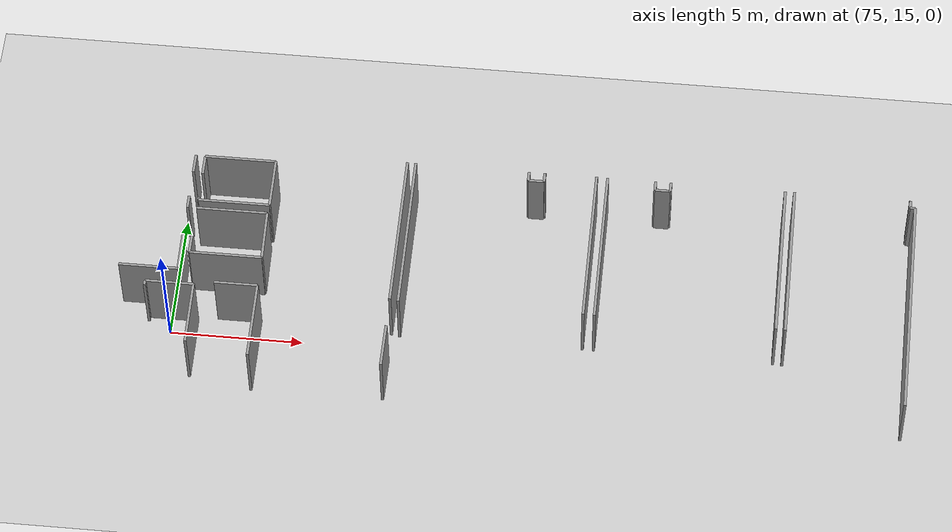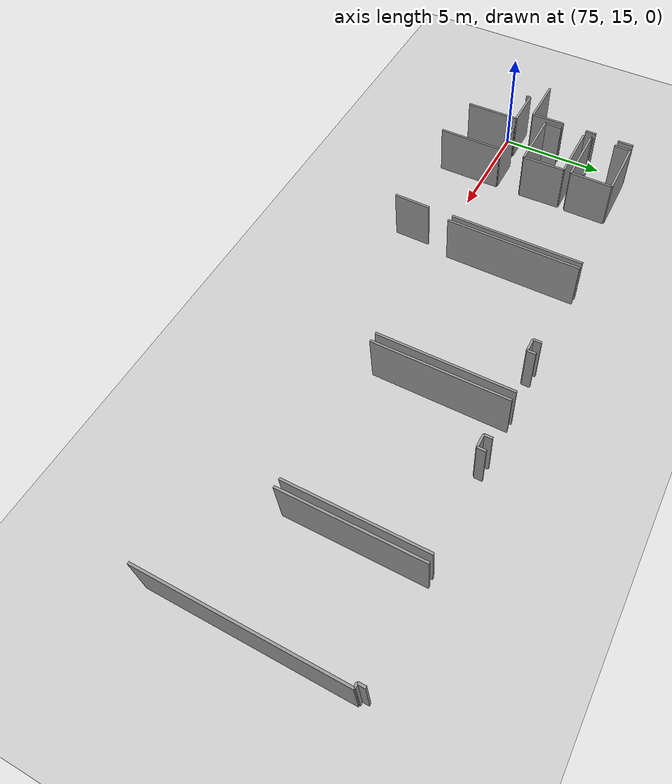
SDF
<sdf version="1.6">
 <world name="default">
  <model name="ground_plane">
   <static>1</static>
   <link name="link">
    <collision name="collision">
     <geometry><plane><normal>0 0 1</normal><size>100 100</size></plane></geometry>
     <surface><friction><ode><mu>100</mu><mu2>50</mu2></ode></friction></surface>
    </collision>
    <visual name="visual">
     <cast_shadows>0</cast_shadows>
     <geometry><plane><normal>0 0 1</normal><size>100 100</size></plane></geometry>
     <material>
      <script><uri>file://media/materials/scripts/gazebo.material</uri><name>Gazebo/Grey</name></script>
     </material>
    </visual>
   </link>
  </model>
  <model name="50010536_PLAN4">
   <static>1</static>
   <link name="Wall_267">
    <collision name="Wall_267_Collision">
     <geometry><box><size>0.203256832683 0.1 2.5</size></box></geometry>
     <pose>0.101628416341 0 1.25 0 0 0</pose>
    </collision>
    <visual name="Wall_267_Visual">
     <pose>0.101628416341 0 1.25 0 0 0</pose>
     <geometry><box><size>0.203256832683 0.1 2.5</size></box></geometry>
     <material>
      <script><uri>file://media/materials/scripts/gazebo.material</uri><name>Gazebo/Grey</name></script>
      <ambient>1 1 1 1</ambient>
     </material>
    </visual>
    <pose>176.629832079 -6.60864044694 0 0 0 1.57079632679</pose>
   </link>
   <link name="Wall_268">
    <collision name="Wall_268_Collision">
     <geometry><box><size>1.81493825985 0.1 2.5</size></box></geometry>
     <pose>0.907469129924 0 1.25 0 0 0</pose>
    </collision>
    <visual name="Wall_268_Visual">
     <pose>0.907469129924 0 1.25 0 0 0</pose>
     <geometry><box><size>1.81493825985 0.1 2.5</size></box></geometry>
     <material>
      <script><uri>file://media/materials/scripts/gazebo.material</uri><name>Gazebo/Grey</name></script>
      <ambient>1 1 1 1</ambient>
     </material>
    </visual>
    <pose>176.629832079 -6.40538361426 0 0 0 0.0</pose>
   </link>
   <link name="Wall_269">
    <collision name="Wall_269_Collision">
     <geometry><box><size>2.52652843027 0.1 2.5</size></box></geometry>
     <pose>1.26326421514 0 1.25 0 0 0</pose>
    </collision>
    <visual name="Wall_269_Visual">
     <pose>1.26326421514 0 1.25 0 0 0</pose>
     <geometry><box><size>2.52652843027 0.1 2.5</size></box></geometry>
     <material>
      <script><uri>file://media/materials/scripts/gazebo.material</uri><name>Gazebo/Grey</name></script>
      <ambient>1 1 1 1</ambient>
     </material>
    </visual>
    <pose>178.444770339 -6.40538361426 0 0 0 -1.55933781439</pose>
   </link>
   <link name="Wall_270">
    <collision name="Wall_270_Collision">
     <geometry><box><size>2.23597752595 0.1 2.5</size></box></geometry>
     <pose>1.11798876297 0 1.25 0 0 0</pose>
    </collision>
    <visual name="Wall_270_Visual">
     <pose>1.11798876297 0 1.25 0 0 0</pose>
     <geometry><box><size>2.23597752595 0.1 2.5</size></box></geometry>
     <material>
      <script><uri>file://media/materials/scripts/gazebo.material</uri><name>Gazebo/Grey</name></script>
      <ambient>1 1 1 1</ambient>
     </material>
    </visual>
    <pose>177.776897438 -5.76653652033 0 0 0 3.14159265359</pose>
   </link>
   <link name="Wall_275">
    <collision name="Wall_275_Collision">
     <geometry><box><size>0.754188489985 0.1 2.5</size></box></geometry>
     <pose>0.377094244993 0 1.25 0 0 0</pose>
    </collision>
    <visual name="Wall_275_Visual">
     <pose>0.377094244993 0 1.25 0 0 0</pose>
     <geometry><box><size>0.754188489985 0.1 2.5</size></box></geometry>
     <material>
      <script><uri>file://media/materials/scripts/gazebo.material</uri><name>Gazebo/Grey</name></script>
      <ambient>1 1 1 1</ambient>
     </material>
    </visual>
    <pose>177.755312192 -0.599054058344 0 0 0 -1.57079632679</pose>
   </link>
   <link name="Wall_276">
    <collision name="Wall_276_Collision">
     <geometry><box><size>0.522997809732 0.1 2.5</size></box></geometry>
     <pose>0.261498904866 0 1.25 0 0 0</pose>
    </collision>
    <visual name="Wall_276_Visual">
     <pose>0.261498904866 0 1.25 0 0 0</pose>
     <geometry><box><size>0.522997809732 0.1 2.5</size></box></geometry>
     <material>
      <script><uri>file://media/materials/scripts/gazebo.material</uri><name>Gazebo/Grey</name></script>
      <ambient>1 1 1 1</ambient>
     </material>
    </visual>
    <pose>177.755312192 -2.47973843761 0 0 0 -1.57079632679</pose>
   </link>
   <link name="Wall_277">
    <collision name="Wall_277_Collision">
     <geometry><box><size>1.60672214965 0.1 2.5</size></box></geometry>
     <pose>0.803361074826 0 1.25 0 0 0</pose>
    </collision>
    <visual name="Wall_277_Visual">
     <pose>0.803361074826 0 1.25 0 0 0</pose>
     <geometry><box><size>1.60672214965 0.1 2.5</size></box></geometry>
     <material>
      <script><uri>file://media/materials/scripts/gazebo.material</uri><name>Gazebo/Grey</name></script>
      <ambient>1 1 1 1</ambient>
     </material>
    </visual>
    <pose>177.755312192 -4.15995936895 0 0 0 -1.55736158626</pose>
   </link>
   <link name="Wall_278">
    <collision name="Wall_278_Collision">
     <geometry><box><size>2.70171094816 0.1 2.5</size></box></geometry>
     <pose>1.35085547408 0 1.25 0 0 0</pose>
    </collision>
    <visual name="Wall_278_Visual">
     <pose>1.35085547408 0 1.25 0 0 0</pose>
     <geometry><box><size>2.70171094816 0.1 2.5</size></box></geometry>
     <material>
      <script><uri>file://media/materials/scripts/gazebo.material</uri><name>Gazebo/Grey</name></script>
      <ambient>1 1 1 1</ambient>
     </material>
    </visual>
    <pose>180.819655271 -2.61338920103 0 0 0 3.14159265359</pose>
   </link>
   <link name="Wall_279">
    <collision name="Wall_279_Collision">
     <geometry><box><size>0.105005872457 0.1 2.5</size></box></geometry>
     <pose>0.0525029362283 0 1.25 0 0 0</pose>
    </collision>
    <visual name="Wall_279_Visual">
     <pose>0.0525029362283 0 1.25 0 0 0</pose>
     <geometry><box><size>0.105005872457 0.1 2.5</size></box></geometry>
     <material>
      <script><uri>file://media/materials/scripts/gazebo.material</uri><name>Gazebo/Grey</name></script>
      <ambient>1 1 1 1</ambient>
     </material>
    </visual>
    <pose>178.117944323 -2.61338920103 0 0 0 1.57079632679</pose>
   </link>
   <link name="Wall_280">
    <collision name="Wall_280_Collision">
     <geometry><box><size>0.792356283529 0.1 2.5</size></box></geometry>
     <pose>0.396178141764 0 1.25 0 0 0</pose>
    </collision>
    <visual name="Wall_280_Visual">
     <pose>0.396178141764 0 1.25 0 0 0</pose>
     <geometry><box><size>0.792356283529 0.1 2.5</size></box></geometry>
     <material>
      <script><uri>file://media/materials/scripts/gazebo.material</uri><name>Gazebo/Grey</name></script>
      <ambient>1 1 1 1</ambient>
     </material>
    </visual>
    <pose>178.117944323 -1.40095863886 0 0 0 1.57079632679</pose>
   </link>
   <link name="Wall_281">
    <collision name="Wall_281_Collision">
     <geometry><box><size>2.69231501762 0.1 2.5</size></box></geometry>
     <pose>1.34615750881 0 1.25 0 0 0</pose>
    </collision>
    <visual name="Wall_281_Visual">
     <pose>1.34615750881 0 1.25 0 0 0</pose>
     <geometry><box><size>2.69231501762 0.1 2.5</size></box></geometry>
     <material>
      <script><uri>file://media/materials/scripts/gazebo.material</uri><name>Gazebo/Grey</name></script>
      <ambient>1 1 1 1</ambient>
     </material>
    </visual>
    <pose>178.117944323 -0.608602355331 0 0 0 0.0</pose>
   </link>
   <link name="Wall_282">
    <collision name="Wall_282_Collision">
     <geometry><box><size>2.00480886376 0.1 2.5</size></box></geometry>
     <pose>1.00240443188 0 1.25 0 0 0</pose>
    </collision>
    <visual name="Wall_282_Visual">
     <pose>1.00240443188 0 1.25 0 0 0</pose>
     <geometry><box><size>2.00480886376 0.1 2.5</size></box></geometry>
     <material>
      <script><uri>file://media/materials/scripts/gazebo.material</uri><name>Gazebo/Grey</name></script>
      <ambient>1 1 1 1</ambient>
     </material>
    </visual>
    <pose>180.81025934 -0.608602355331 0 0 0 -1.56610961321</pose>
   </link>
   <link name="Wall_283">
    <collision name="Wall_283_Collision">
     <geometry><box><size>2.73370790083 0.1 2.5</size></box></geometry>
     <pose>1.36685395042 0 1.25 0 0 0</pose>
    </collision>
    <visual name="Wall_283_Visual">
     <pose>1.36685395042 0 1.25 0 0 0</pose>
     <geometry><box><size>2.73370790083 0.1 2.5</size></box></geometry>
     <material>
      <script><uri>file://media/materials/scripts/gazebo.material</uri><name>Gazebo/Grey</name></script>
      <ambient>1 1 1 1</ambient>
     </material>
    </visual>
    <pose>180.830320922 -4.99530838333 0 0 0 3.14159265359</pose>
   </link>
   <link name="Wall_284">
    <collision name="Wall_284_Collision">
     <geometry><box><size>0.845379805098 0.1 2.5</size></box></geometry>
     <pose>0.422689902549 0 1.25 0 0 0</pose>
    </collision>
    <visual name="Wall_284_Visual">
     <pose>0.422689902549 0 1.25 0 0 0</pose>
     <geometry><box><size>0.845379805098 0.1 2.5</size></box></geometry>
     <material>
      <script><uri>file://media/materials/scripts/gazebo.material</uri><name>Gazebo/Grey</name></script>
      <ambient>1 1 1 1</ambient>
     </material>
    </visual>
    <pose>178.096613021 -4.99530838333 0 0 0 1.57079632679</pose>
   </link>
   <link name="Wall_285">
    <collision name="Wall_285_Collision">
     <geometry><box><size>2.68495063962 0.1 2.5</size></box></geometry>
     <pose>1.34247531981 0 1.25 0 0 0</pose>
    </collision>
    <visual name="Wall_285_Visual">
     <pose>1.34247531981 0 1.25 0 0 0</pose>
     <geometry><box><size>2.68495063962 0.1 2.5</size></box></geometry>
     <material>
      <script><uri>file://media/materials/scripts/gazebo.material</uri><name>Gazebo/Grey</name></script>
      <ambient>1 1 1 1</ambient>
     </material>
    </visual>
    <pose>178.096613021 -2.98572199473 0 0 0 0.0</pose>
   </link>
   <link name="Wall_286">
    <collision name="Wall_286_Collision">
     <geometry><box><size>2.01017778412 0.1 2.5</size></box></geometry>
     <pose>1.00508889206 0 1.25 0 0 0</pose>
    </collision>
    <visual name="Wall_286_Visual">
     <pose>1.00508889206 0 1.25 0 0 0</pose>
     <geometry><box><size>2.01017778412 0.1 2.5</size></box></geometry>
     <material>
      <script><uri>file://media/materials/scripts/gazebo.material</uri><name>Gazebo/Grey</name></script>
      <ambient>1 1 1 1</ambient>
     </material>
    </visual>
    <pose>180.781563661 -2.98572199473 0 0 0 -1.54653874936</pose>
   </link>
   <link name="Wall_313">
    <collision name="Wall_313_Collision">
     <geometry><box><size>6.20403136209 0.1 2.5</size></box></geometry>
     <pose>3.10201568105 0 1.25 0 0 0</pose>
    </collision>
    <visual name="Wall_313_Visual">
     <pose>3.10201568105 0 1.25 0 0 0</pose>
     <geometry><box><size>6.20403136209 0.1 2.5</size></box></geometry>
     <material>
      <script><uri>file://media/materials/scripts/gazebo.material</uri><name>Gazebo/Grey</name></script>
      <ambient>1 1 1 1</ambient>
     </material>
    </visual>
    <pose>185.795435355 -0.190458051614 0 0 0 -1.57079632679</pose>
   </link>
   <link name="Wall_314">
    <collision name="Wall_314_Collision">
     <geometry><box><size>1.70030463939 0.1 2.5</size></box></geometry>
     <pose>0.850152319695 0 1.25 0 0 0</pose>
    </collision>
    <visual name="Wall_314_Visual">
     <pose>0.850152319695 0 1.25 0 0 0</pose>
     <geometry><box><size>1.70030463939 0.1 2.5</size></box></geometry>
     <material>
      <script><uri>file://media/materials/scripts/gazebo.material</uri><name>Gazebo/Grey</name></script>
      <ambient>1 1 1 1</ambient>
     </material>
    </visual>
    <pose>185.795435355 -7.58000190458 0 0 0 -1.58154988526</pose>
   </link>
   <link name="Wall_318">
    <collision name="Wall_318_Collision">
     <geometry><box><size>6.25832460401 0.1 2.5</size></box></geometry>
     <pose>3.129162302 0 1.25 0 0 0</pose>
    </collision>
    <visual name="Wall_318_Visual">
     <pose>3.129162302 0 1.25 0 0 0</pose>
     <geometry><box><size>6.25832460401 0.1 2.5</size></box></geometry>
     <material>
      <script><uri>file://media/materials/scripts/gazebo.material</uri><name>Gazebo/Grey</name></script>
      <ambient>1 1 1 1</ambient>
     </material>
    </visual>
    <pose>186.111087833 -6.4634606228 0 0 0 1.57079632679</pose>
   </link>
   <link name="Wall_319">
    <collision name="Wall_319_Collision">
     <geometry><box><size>0.38188109069 0.1 2.5</size></box></geometry>
     <pose>0.190940545345 0 1.25 0 0 0</pose>
    </collision>
    <visual name="Wall_319_Visual">
     <pose>0.190940545345 0 1.25 0 0 0</pose>
     <geometry><box><size>0.38188109069 0.1 2.5</size></box></geometry>
     <material>
      <script><uri>file://media/materials/scripts/gazebo.material</uri><name>Gazebo/Grey</name></script>
      <ambient>1 1 1 1</ambient>
     </material>
    </visual>
    <pose>190.435247437 -0.205136018792 0 0 0 -1.57079632679</pose>
   </link>
   <link name="Wall_320">
    <collision name="Wall_320_Collision">
     <geometry><box><size>0.597784338 0.1 2.5</size></box></geometry>
     <pose>0.298892169 0 1.25 0 0 0</pose>
    </collision>
    <visual name="Wall_320_Visual">
     <pose>0.298892169 0 1.25 0 0 0</pose>
     <geometry><box><size>0.597784338 0.1 2.5</size></box></geometry>
     <material>
      <script><uri>file://media/materials/scripts/gazebo.material</uri><name>Gazebo/Grey</name></script>
      <ambient>1 1 1 1</ambient>
     </material>
    </visual>
    <pose>190.435247437 -0.587017109482 0 0 0 0.0</pose>
   </link>
   <link name="Wall_321">
    <collision name="Wall_321_Collision">
     <geometry><box><size>0.38188109069 0.1 2.5</size></box></geometry>
     <pose>0.190940545345 0 1.25 0 0 0</pose>
    </collision>
    <visual name="Wall_321_Visual">
     <pose>0.190940545345 0 1.25 0 0 0</pose>
     <geometry><box><size>0.38188109069 0.1 2.5</size></box></geometry>
     <material>
      <script><uri>file://media/materials/scripts/gazebo.material</uri><name>Gazebo/Grey</name></script>
      <ambient>1 1 1 1</ambient>
     </material>
    </visual>
    <pose>191.033031775 -0.587017109482 0 0 0 1.57079632679</pose>
   </link>
   <link name="Wall_322">
    <collision name="Wall_322_Collision">
     <geometry><box><size>6.18935339491 0.1 2.5</size></box></geometry>
     <pose>3.09467669746 0 1.25 0 0 0</pose>
    </collision>
    <visual name="Wall_322_Visual">
     <pose>3.09467669746 0 1.25 0 0 0</pose>
     <geometry><box><size>6.18935339491 0.1 2.5</size></box></geometry>
     <material>
      <script><uri>file://media/materials/scripts/gazebo.material</uri><name>Gazebo/Grey</name></script>
      <ambient>1 1 1 1</ambient>
     </material>
    </visual>
    <pose>193.00059042 -0.205136018792 0 0 0 -1.57079632679</pose>
   </link>
   <link name="Wall_327">
    <collision name="Wall_327_Collision">
     <geometry><box><size>6.19194362442 0.1 2.5</size></box></geometry>
     <pose>3.09597181221 0 1.25 0 0 0</pose>
    </collision>
    <visual name="Wall_327_Visual">
     <pose>3.09597181221 0 1.25 0 0 0</pose>
     <geometry><box><size>6.19194362442 0.1 2.5</size></box></geometry>
     <material>
      <script><uri>file://media/materials/scripts/gazebo.material</uri><name>Gazebo/Grey</name></script>
      <ambient>1 1 1 1</ambient>
     </material>
    </visual>
    <pose>193.421121798 -6.40538361426 0 0 0 1.57079632679</pose>
   </link>
   <link name="Wall_328">
    <collision name="Wall_328_Collision">
     <geometry><box><size>0.373577119639 0.1 2.5</size></box></geometry>
     <pose>0.18678855982 0 1.25 0 0 0</pose>
    </collision>
    <visual name="Wall_328_Visual">
     <pose>0.18678855982 0 1.25 0 0 0</pose>
     <geometry><box><size>0.373577119639 0.1 2.5</size></box></geometry>
     <material>
      <script><uri>file://media/materials/scripts/gazebo.material</uri><name>Gazebo/Grey</name></script>
      <ambient>1 1 1 1</ambient>
     </material>
    </visual>
    <pose>195.241900771 -0.213439989842 0 0 0 -1.57079632679</pose>
   </link>
   <link name="Wall_329">
    <collision name="Wall_329_Collision">
     <geometry><box><size>0.581024029457 0.1 2.5</size></box></geometry>
     <pose>0.290512014729 0 1.25 0 0 0</pose>
    </collision>
    <visual name="Wall_329_Visual">
     <pose>0.290512014729 0 1.25 0 0 0</pose>
     <geometry><box><size>0.581024029457 0.1 2.5</size></box></geometry>
     <material>
      <script><uri>file://media/materials/scripts/gazebo.material</uri><name>Gazebo/Grey</name></script>
      <ambient>1 1 1 1</ambient>
     </material>
    </visual>
    <pose>195.241900771 -0.587017109482 0 0 0 0.0</pose>
   </link>
   <link name="Wall_330">
    <collision name="Wall_330_Collision">
     <geometry><box><size>0.373577119639 0.1 2.5</size></box></geometry>
     <pose>0.18678855982 0 1.25 0 0 0</pose>
    </collision>
    <visual name="Wall_330_Visual">
     <pose>0.18678855982 0 1.25 0 0 0</pose>
     <geometry><box><size>0.373577119639 0.1 2.5</size></box></geometry>
     <material>
      <script><uri>file://media/materials/scripts/gazebo.material</uri><name>Gazebo/Grey</name></script>
      <ambient>1 1 1 1</ambient>
     </material>
    </visual>
    <pose>195.822924801 -0.587017109482 0 0 0 1.57079632679</pose>
   </link>
   <link name="Wall_331">
    <collision name="Wall_331_Collision">
     <geometry><box><size>6.18876932356 0.1 2.5</size></box></geometry>
     <pose>3.09438466178 0 1.25 0 0 0</pose>
    </collision>
    <visual name="Wall_331_Visual">
     <pose>3.09438466178 0 1.25 0 0 0</pose>
     <geometry><box><size>6.18876932356 0.1 2.5</size></box></geometry>
     <material>
      <script><uri>file://media/materials/scripts/gazebo.material</uri><name>Gazebo/Grey</name></script>
      <ambient>1 1 1 1</ambient>
     </material>
    </visual>
    <pose>200.156226391 -0.213439989842 0 0 0 -1.57079632679</pose>
   </link>
   <link name="Wall_336">
    <collision name="Wall_336_Collision">
     <geometry><box><size>6.21175126178 0.1 2.5</size></box></geometry>
     <pose>3.10587563089 0 1.25 0 0 0</pose>
    </collision>
    <visual name="Wall_336_Visual">
     <pose>3.10587563089 0 1.25 0 0 0</pose>
     <geometry><box><size>6.21175126178 0.1 2.5</size></box></geometry>
     <material>
      <script><uri>file://media/materials/scripts/gazebo.material</uri><name>Gazebo/Grey</name></script>
      <ambient>1 1 1 1</ambient>
     </material>
    </visual>
    <pose>200.504891598 -6.41485572803 0 0 0 1.57079632679</pose>
   </link>
   <link name="Wall_337">
    <collision name="Wall_337_Collision">
     <geometry><box><size>0.315627083135 0.1 2.5</size></box></geometry>
     <pose>0.157813541567 0 1.25 0 0 0</pose>
    </collision>
    <visual name="Wall_337_Visual">
     <pose>0.157813541567 0 1.25 0 0 0</pose>
     <geometry><box><size>0.315627083135 0.1 2.5</size></box></geometry>
     <material>
      <script><uri>file://media/materials/scripts/gazebo.material</uri><name>Gazebo/Grey</name></script>
      <ambient>1 1 1 1</ambient>
     </material>
    </visual>
    <pose>204.885172841 -0.203104466241 0 0 0 -1.57079632679</pose>
   </link>
   <link name="Wall_338">
    <collision name="Wall_338_Collision">
     <geometry><box><size>0.18918833127 0.1 2.5</size></box></geometry>
     <pose>0.094594165635 0 1.25 0 0 0</pose>
    </collision>
    <visual name="Wall_338_Visual">
     <pose>0.094594165635 0 1.25 0 0 0</pose>
     <geometry><box><size>0.18918833127 0.1 2.5</size></box></geometry>
     <material>
      <script><uri>file://media/materials/scripts/gazebo.material</uri><name>Gazebo/Grey</name></script>
      <ambient>1 1 1 1</ambient>
     </material>
    </visual>
    <pose>204.885172841 -0.518731549376 0 0 0 0.0</pose>
   </link>
   <link name="Wall_339">
    <collision name="Wall_339_Collision">
     <geometry><box><size>8.76152879961 0.1 2.5</size></box></geometry>
     <pose>4.3807643998 0 1.25 0 0 0</pose>
    </collision>
    <visual name="Wall_339_Visual">
     <pose>4.3807643998 0 1.25 0 0 0</pose>
     <geometry><box><size>8.76152879961 0.1 2.5</size></box></geometry>
     <material>
      <script><uri>file://media/materials/scripts/gazebo.material</uri><name>Gazebo/Grey</name></script>
      <ambient>1 1 1 1</ambient>
     </material>
    </visual>
    <pose>205.074361172 -0.518731549376 0 0 0 -1.57424542852</pose>
   </link>
   <link name="Wall_342">
    <collision name="Wall_342_Collision">
     <geometry><box><size>1.62625781672 0.1 2.5</size></box></geometry>
     <pose>0.813128908358 0 1.25 0 0 0</pose>
    </collision>
    <visual name="Wall_342_Visual">
     <pose>0.813128908358 0 1.25 0 0 0</pose>
     <geometry><box><size>1.62625781672 0.1 2.5</size></box></geometry>
     <material>
      <script><uri>file://media/materials/scripts/gazebo.material</uri><name>Gazebo/Grey</name></script>
      <ambient>1 1 1 1</ambient>
     </material>
    </visual>
    <pose>179.199746056 -6.24565279497 0 0 0 0.0</pose>
   </link>
   <link name="Wall_343">
    <collision name="Wall_343_Collision">
     <geometry><box><size>3.06361544134 0.1 2.5</size></box></geometry>
     <pose>1.53180772067 0 1.25 0 0 0</pose>
    </collision>
    <visual name="Wall_343_Visual">
     <pose>1.53180772067 0 1.25 0 0 0</pose>
     <geometry><box><size>3.06361544134 0.1 2.5</size></box></geometry>
     <material>
      <script><uri>file://media/materials/scripts/gazebo.material</uri><name>Gazebo/Grey</name></script>
      <ambient>1 1 1 1</ambient>
     </material>
    </visual>
    <pose>180.826003873 -6.24565279497 0 0 0 -1.56607156089</pose>
   </link>
   <pose>-102.5 22.0619893343 0 0 0 0</pose>
  </model>
 </world>
</sdf>
